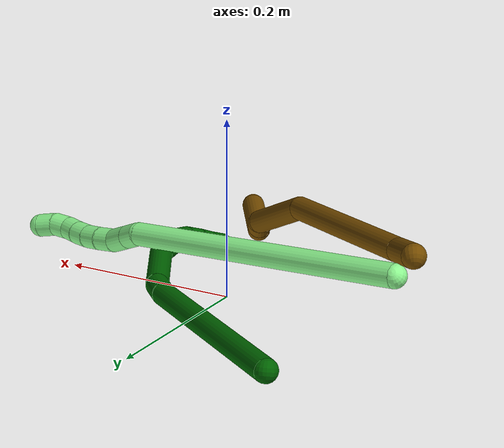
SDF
<sdf version="1.7">
 <world name="default">
  <model name="6">
   <static>0</static>
   <link name="6">
    <collision name="collision-cylinder-e_1_1_4">
     <pose>0.119059 -0.030065 0.020637 0.969263 1.27358 0.742655</pose>
     <geometry><cylinder><radius>0.0125</radius><length>0.249037</length></cylinder></geometry>
     <surface>
      <friction><ode><mu>1.16</mu><mu2>1.16</mu2><slip1>0</slip1><slip2>0</slip2></ode></friction>
      <contact><ode><kp>1e+06</kp><kd>1</kd><max_vel>0</max_vel><min_depth>0.001</min_depth></ode></contact>
     </surface>
    </collision>
    <visual name="visual-cylinder-e_1_1_4">
     <pose>0.119059 -0.030065 0.020637 0.969263 1.27358 0.742655</pose>
     <geometry><cylinder><radius>0.0125</radius><length>0.249037</length></cylinder></geometry>
     <material><ambient>0 0.392157 0.003922 1</ambient></material>
    </visual>
    <collision name="collision-cylinder-e_2_4_5">
     <pose>0.251006 -0.06569 0.044533 1.04044 1.10711 0.680516</pose>
     <geometry><cylinder><radius>0.0125</radius><length>0.028818</length></cylinder></geometry>
     <surface>
      <friction><ode><mu>1.16</mu><mu2>1.16</mu2><slip1>0</slip1><slip2>0</slip2></ode></friction>
      <contact><ode><kp>1e+06</kp><kd>1</kd><max_vel>0</max_vel><min_depth>0.001</min_depth></ode></contact>
     </surface>
    </collision>
    <visual name="visual-cylinder-e_2_4_5">
     <pose>0.251006 -0.06569 0.044533 1.04044 1.10711 0.680516</pose>
     <geometry><cylinder><radius>0.0125</radius><length>0.028818</length></cylinder></geometry>
     <material><ambient>0 0.392157 0.003922 1</ambient></material>
    </visual>
    <collision name="collision-cylinder-e_3_5_6">
     <pose>0.29952 -0.100029 0.061185 1.13525 0.84297 0.556908</pose>
     <geometry><cylinder><radius>0.0125</radius><length>0.095433</length></cylinder></geometry>
     <surface>
      <friction><ode><mu>1.16</mu><mu2>1.16</mu2><slip1>0</slip1><slip2>0</slip2></ode></friction>
      <contact><ode><kp>1e+06</kp><kd>1</kd><max_vel>0</max_vel><min_depth>0.001</min_depth></ode></contact>
     </surface>
    </collision>
    <visual name="visual-cylinder-e_3_5_6">
     <pose>0.29952 -0.100029 0.061185 1.13525 0.84297 0.556908</pose>
     <geometry><cylinder><radius>0.0125</radius><length>0.095433</length></cylinder></geometry>
     <material><ambient>0 0.392157 0.003922 1</ambient></material>
    </visual>
    <collision name="collision-cylinder-e_4_6_7">
     <pose>0.34119 -0.139654 0.078466 1.22662 0.483111 0.343397</pose>
     <geometry><cylinder><radius>0.0125</radius><length>0.026021</length></cylinder></geometry>
     <surface>
      <friction><ode><mu>1.16</mu><mu2>1.16</mu2><slip1>0</slip1><slip2>0</slip2></ode></friction>
      <contact><ode><kp>1e+06</kp><kd>1</kd><max_vel>0</max_vel><min_depth>0.001</min_depth></ode></contact>
     </surface>
    </collision>
    <visual name="visual-cylinder-e_4_6_7">
     <pose>0.34119 -0.139654 0.078466 1.22662 0.483111 0.343397</pose>
     <geometry><cylinder><radius>0.0125</radius><length>0.026021</length></cylinder></geometry>
     <material><ambient>0 0.392157 0.003922 1</ambient></material>
    </visual>
    <collision name="collision-cylinder-e_5_7_8">
     <pose>0.352016 -0.159035 0.085447 1.2231 0.484878 0.343418</pose>
     <geometry><cylinder><radius>0.0125</radius><length>0.020521</length></cylinder></geometry>
     <surface>
      <friction><ode><mu>1.16</mu><mu2>1.16</mu2><slip1>0</slip1><slip2>0</slip2></ode></friction>
      <contact><ode><kp>1e+06</kp><kd>1</kd><max_vel>0</max_vel><min_depth>0.001</min_depth></ode></contact>
     </surface>
    </collision>
    <visual name="visual-cylinder-e_5_7_8">
     <pose>0.352016 -0.159035 0.085447 1.2231 0.484878 0.343418</pose>
     <geometry><cylinder><radius>0.0125</radius><length>0.020521</length></cylinder></geometry>
     <material><ambient>0 0.392157 0.003922 1</ambient></material>
    </visual>
    <collision name="collision-cylinder-e_6_8_9">
     <pose>0.360572 -0.176809 0.089358 1.4824 0.38635 0.354333</pose>
     <geometry><cylinder><radius>0.0125</radius><length>0.020027</length></cylinder></geometry>
     <surface>
      <friction><ode><mu>1.16</mu><mu2>1.16</mu2><slip1>0</slip1><slip2>0</slip2></ode></friction>
      <contact><ode><kp>1e+06</kp><kd>1</kd><max_vel>0</max_vel><min_depth>0.001</min_depth></ode></contact>
     </surface>
    </collision>
    <visual name="visual-cylinder-e_6_8_9">
     <pose>0.360572 -0.176809 0.089358 1.4824 0.38635 0.354333</pose>
     <geometry><cylinder><radius>0.0125</radius><length>0.020027</length></cylinder></geometry>
     <material><ambient>0 0.392157 0.003922 1</ambient></material>
    </visual>
    <collision name="collision-cylinder-e_7_9_10">
     <pose>0.365212 -0.196007 0.089189 1.66967 0.086395 0.095376</pose>
     <geometry><cylinder><radius>0.0125</radius><length>0.020091</length></cylinder></geometry>
     <surface>
      <friction><ode><mu>1.16</mu><mu2>1.16</mu2><slip1>0</slip1><slip2>0</slip2></ode></friction>
      <contact><ode><kp>1e+06</kp><kd>1</kd><max_vel>0</max_vel><min_depth>0.001</min_depth></ode></contact>
     </surface>
    </collision>
    <visual name="visual-cylinder-e_7_9_10">
     <pose>0.365212 -0.196007 0.089189 1.66967 0.086395 0.095376</pose>
     <geometry><cylinder><radius>0.0125</radius><length>0.020091</length></cylinder></geometry>
     <material><ambient>0 0.392157 0.003922 1</ambient></material>
    </visual>
    <collision name="collision-cylinder-e_8_10_11">
     <pose>0.367755 -0.215733 0.086808 1.71254 0.168307 0.19388</pose>
     <geometry><cylinder><radius>0.0125</radius><length>0.020013</length></cylinder></geometry>
     <surface>
      <friction><ode><mu>1.16</mu><mu2>1.16</mu2><slip1>0</slip1><slip2>0</slip2></ode></friction>
      <contact><ode><kp>1e+06</kp><kd>1</kd><max_vel>0</max_vel><min_depth>0.001</min_depth></ode></contact>
     </surface>
    </collision>
    <visual name="visual-cylinder-e_8_10_11">
     <pose>0.367755 -0.215733 0.086808 1.71254 0.168307 0.19388</pose>
     <geometry><cylinder><radius>0.0125</radius><length>0.020013</length></cylinder></geometry>
     <material><ambient>0 0.392157 0.003922 1</ambient></material>
    </visual>
    <collision name="collision-cylinder-e_9_11_2">
     <pose>0.370874 -0.235361 0.084395 1.67379 0.144563 0.160211</pose>
     <geometry><cylinder><radius>0.0125</radius><length>0.020038</length></cylinder></geometry>
     <surface>
      <friction><ode><mu>1.16</mu><mu2>1.16</mu2><slip1>0</slip1><slip2>0</slip2></ode></friction>
      <contact><ode><kp>1e+06</kp><kd>1</kd><max_vel>0</max_vel><min_depth>0.001</min_depth></ode></contact>
     </surface>
    </collision>
    <visual name="visual-cylinder-e_9_11_2">
     <pose>0.370874 -0.235361 0.084395 1.67379 0.144563 0.160211</pose>
     <geometry><cylinder><radius>0.0125</radius><length>0.020038</length></cylinder></geometry>
     <material><ambient>0 0.392157 0.003922 1</ambient></material>
    </visual>
    <collision name="collision-sphere-2">
     <pose>0.372318 -0.245223 0.083376 0 -0 0</pose>
     <geometry><sphere><radius>0.0125</radius></sphere></geometry>
     <surface>
      <friction><ode><mu>1.16</mu><mu2>1.16</mu2><slip1>0</slip1><slip2>0</slip2></ode></friction>
      <contact><ode><kp>1e+06</kp><kd>1</kd><max_vel>0</max_vel><min_depth>0.001</min_depth></ode></contact>
     </surface>
    </collision>
    <visual name="visual-sphere-2">
     <pose>0.372318 -0.245223 0.083376 0 -0 0</pose>
     <geometry><sphere><radius>0.0125</radius></sphere></geometry>
     <material><ambient>0 0.392157 0.003922 1</ambient></material>
    </visual>
    <collision name="collision-sphere-11">
     <pose>0.369431 -0.225499 0.085414 0 -0 0</pose>
     <geometry><sphere><radius>0.0125</radius></sphere></geometry>
     <surface>
      <friction><ode><mu>1.16</mu><mu2>1.16</mu2><slip1>0</slip1><slip2>0</slip2></ode></friction>
      <contact><ode><kp>1e+06</kp><kd>1</kd><max_vel>0</max_vel><min_depth>0.001</min_depth></ode></contact>
     </surface>
    </collision>
    <visual name="visual-sphere-11">
     <pose>0.369431 -0.225499 0.085414 0 -0 0</pose>
     <geometry><sphere><radius>0.0125</radius></sphere></geometry>
     <material><ambient>0 0.392157 0.003922 1</ambient></material>
    </visual>
    <collision name="collision-sphere-10">
     <pose>0.366078 -0.205967 0.088201 0 -0 0</pose>
     <geometry><sphere><radius>0.0125</radius></sphere></geometry>
     <surface>
      <friction><ode><mu>1.16</mu><mu2>1.16</mu2><slip1>0</slip1><slip2>0</slip2></ode></friction>
      <contact><ode><kp>1e+06</kp><kd>1</kd><max_vel>0</max_vel><min_depth>0.001</min_depth></ode></contact>
     </surface>
    </collision>
    <visual name="visual-sphere-10">
     <pose>0.366078 -0.205967 0.088201 0 -0 0</pose>
     <geometry><sphere><radius>0.0125</radius></sphere></geometry>
     <material><ambient>0 0.392157 0.003922 1</ambient></material>
    </visual>
    <collision name="collision-sphere-9">
     <pose>0.364345 -0.186048 0.090177 0 -0 0</pose>
     <geometry><sphere><radius>0.0125</radius></sphere></geometry>
     <surface>
      <friction><ode><mu>1.16</mu><mu2>1.16</mu2><slip1>0</slip1><slip2>0</slip2></ode></friction>
      <contact><ode><kp>1e+06</kp><kd>1</kd><max_vel>0</max_vel><min_depth>0.001</min_depth></ode></contact>
     </surface>
    </collision>
    <visual name="visual-sphere-9">
     <pose>0.364345 -0.186048 0.090177 0 -0 0</pose>
     <geometry><sphere><radius>0.0125</radius></sphere></geometry>
     <material><ambient>0 0.392157 0.003922 1</ambient></material>
    </visual>
    <collision name="collision-sphere-4">
     <pose>0.238118 -0.060131 0.041273 0 -0 0</pose>
     <geometry><sphere><radius>0.0125</radius></sphere></geometry>
     <surface>
      <friction><ode><mu>1.16</mu><mu2>1.16</mu2><slip1>0</slip1><slip2>0</slip2></ode></friction>
      <contact><ode><kp>1e+06</kp><kd>1</kd><max_vel>0</max_vel><min_depth>0.001</min_depth></ode></contact>
     </surface>
    </collision>
    <visual name="visual-sphere-4">
     <pose>0.238118 -0.060131 0.041273 0 -0 0</pose>
     <geometry><sphere><radius>0.0125</radius></sphere></geometry>
     <material><ambient>0 0.392157 0.003922 1</ambient></material>
    </visual>
    <collision name="collision-sphere-1">
     <geometry><sphere><radius>0.0125</radius></sphere></geometry>
     <surface>
      <friction><ode><mu>1.16</mu><mu2>1.16</mu2><slip1>0</slip1><slip2>0</slip2></ode></friction>
      <contact><ode><kp>1e+06</kp><kd>1</kd><max_vel>0</max_vel><min_depth>0.001</min_depth></ode></contact>
     </surface>
    </collision>
    <visual name="visual-sphere-1">
     <geometry><sphere><radius>0.0125</radius></sphere></geometry>
     <material><ambient>0 0.392157 0.003922 1</ambient></material>
    </visual>
    <collision name="collision-sphere-8">
     <pose>0.356798 -0.167569 0.08854 0 -0 0</pose>
     <geometry><sphere><radius>0.0125</radius></sphere></geometry>
     <surface>
      <friction><ode><mu>1.16</mu><mu2>1.16</mu2><slip1>0</slip1><slip2>0</slip2></ode></friction>
      <contact><ode><kp>1e+06</kp><kd>1</kd><max_vel>0</max_vel><min_depth>0.001</min_depth></ode></contact>
     </surface>
    </collision>
    <visual name="visual-sphere-8">
     <pose>0.356798 -0.167569 0.08854 0 -0 0</pose>
     <geometry><sphere><radius>0.0125</radius></sphere></geometry>
     <material><ambient>0 0.392157 0.003922 1</ambient></material>
    </visual>
    <collision name="collision-sphere-5">
     <pose>0.263893 -0.071249 0.047793 0 -0 0</pose>
     <geometry><sphere><radius>0.0125</radius></sphere></geometry>
     <surface>
      <friction><ode><mu>1.16</mu><mu2>1.16</mu2><slip1>0</slip1><slip2>0</slip2></ode></friction>
      <contact><ode><kp>1e+06</kp><kd>1</kd><max_vel>0</max_vel><min_depth>0.001</min_depth></ode></contact>
     </surface>
    </collision>
    <visual name="visual-sphere-5">
     <pose>0.263893 -0.071249 0.047793 0 -0 0</pose>
     <geometry><sphere><radius>0.0125</radius></sphere></geometry>
     <material><ambient>0 0.392157 0.003922 1</ambient></material>
    </visual>
    <collision name="collision-sphere-6">
     <pose>0.335146 -0.128809 0.074578 0 -0 0</pose>
     <geometry><sphere><radius>0.0125</radius></sphere></geometry>
     <surface>
      <friction><ode><mu>1.16</mu><mu2>1.16</mu2><slip1>0</slip1><slip2>0</slip2></ode></friction>
      <contact><ode><kp>1e+06</kp><kd>1</kd><max_vel>0</max_vel><min_depth>0.001</min_depth></ode></contact>
     </surface>
    </collision>
    <visual name="visual-sphere-6">
     <pose>0.335146 -0.128809 0.074578 0 -0 0</pose>
     <geometry><sphere><radius>0.0125</radius></sphere></geometry>
     <material><ambient>0 0.392157 0.003922 1</ambient></material>
    </visual>
    <collision name="collision-sphere-7">
     <pose>0.347234 -0.1505 0.082353 0 -0 0</pose>
     <geometry><sphere><radius>0.0125</radius></sphere></geometry>
     <surface>
      <friction><ode><mu>1.16</mu><mu2>1.16</mu2><slip1>0</slip1><slip2>0</slip2></ode></friction>
      <contact><ode><kp>1e+06</kp><kd>1</kd><max_vel>0</max_vel><min_depth>0.001</min_depth></ode></contact>
     </surface>
    </collision>
    <visual name="visual-sphere-7">
     <pose>0.347234 -0.1505 0.082353 0 -0 0</pose>
     <geometry><sphere><radius>0.0125</radius></sphere></geometry>
     <material><ambient>0 0.392157 0.003922 1</ambient></material>
    </visual>
    <inertial>
     <pose>0.22184 -0.084673 0.046134 0 -0 0</pose>
     <mass>0.5</mass>
     <inertia>
      <ixx>0.000649</ixx>
      <ixy>0</ixy>
      <ixz>0</ixz>
      <iyy>0.001559</iyy>
      <iyz>0</iyz>
      <izz>-0.000927</izz>
     </inertia>
    </inertial>
   </link>
   <pose>-0.189411 0.251961 0.047908 0.250242 0.149871 -0.339359</pose>
  </model>
  <model name="12">
   <static>0</static>
   <link name="12">
    <collision name="collision-cylinder-e_1_1_4">
     <pose>0.025244 -0.007728 -0.017761 2.73117 0.916316 2.34285</pose>
     <geometry><cylinder><radius>0.0125</radius><length>0.063638</length></cylinder></geometry>
     <surface>
      <friction><ode><mu>1.16</mu><mu2>1.16</mu2><slip1>0</slip1><slip2>0</slip2></ode></friction>
      <contact><ode><kp>1e+06</kp><kd>1</kd><max_vel>0</max_vel><min_depth>0.001</min_depth></ode></contact>
     </surface>
    </collision>
    <visual name="visual-cylinder-e_1_1_4">
     <pose>0.025244 -0.007728 -0.017761 2.73117 0.916316 2.34285</pose>
     <geometry><cylinder><radius>0.0125</radius><length>0.063638</length></cylinder></geometry>
     <material><ambient>0.466667 0.301961 0 1</ambient></material>
    </visual>
    <collision name="collision-cylinder-e_2_4_5">
     <pose>0.115007 -0.06814 -0.10113 2.46502 0.654152 1.53448</pose>
     <geometry><cylinder><radius>0.0125</radius><length>0.212062</length></cylinder></geometry>
     <surface>
      <friction><ode><mu>1.16</mu><mu2>1.16</mu2><slip1>0</slip1><slip2>0</slip2></ode></friction>
      <contact><ode><kp>1e+06</kp><kd>1</kd><max_vel>0</max_vel><min_depth>0.001</min_depth></ode></contact>
     </surface>
    </collision>
    <visual name="visual-cylinder-e_2_4_5">
     <pose>0.115007 -0.06814 -0.10113 2.46502 0.654152 1.53448</pose>
     <geometry><cylinder><radius>0.0125</radius><length>0.212062</length></cylinder></geometry>
     <material><ambient>0.466667 0.301961 0 1</ambient></material>
    </visual>
    <collision name="collision-cylinder-e_3_5_6">
     <pose>0.214286 -0.146658 -0.180637 2.06438 0.869856 1.32177</pose>
     <geometry><cylinder><radius>0.0125</radius><length>0.09097</length></cylinder></geometry>
     <surface>
      <friction><ode><mu>1.16</mu><mu2>1.16</mu2><slip1>0</slip1><slip2>0</slip2></ode></friction>
      <contact><ode><kp>1e+06</kp><kd>1</kd><max_vel>0</max_vel><min_depth>0.001</min_depth></ode></contact>
     </surface>
    </collision>
    <visual name="visual-cylinder-e_3_5_6">
     <pose>0.214286 -0.146658 -0.180637 2.06438 0.869856 1.32177</pose>
     <geometry><cylinder><radius>0.0125</radius><length>0.09097</length></cylinder></geometry>
     <material><ambient>0.466667 0.301961 0 1</ambient></material>
    </visual>
    <collision name="collision-cylinder-e_4_6_7">
     <pose>0.259917 -0.173858 -0.197634 2.72622 1.26869 2.58374</pose>
     <geometry><cylinder><radius>0.0125</radius><length>0.022769</length></cylinder></geometry>
     <surface>
      <friction><ode><mu>1.16</mu><mu2>1.16</mu2><slip1>0</slip1><slip2>0</slip2></ode></friction>
      <contact><ode><kp>1e+06</kp><kd>1</kd><max_vel>0</max_vel><min_depth>0.001</min_depth></ode></contact>
     </surface>
    </collision>
    <visual name="visual-cylinder-e_4_6_7">
     <pose>0.259917 -0.173858 -0.197634 2.72622 1.26869 2.58374</pose>
     <geometry><cylinder><radius>0.0125</radius><length>0.022769</length></cylinder></geometry>
     <material><ambient>0.466667 0.301961 0 1</ambient></material>
    </visual>
    <collision name="collision-cylinder-e_5_7_8">
     <pose>0.286724 -0.17731 -0.208015 2.86265 1.12715 2.7044</pose>
     <geometry><cylinder><radius>0.0125</radius><length>0.035294</length></cylinder></geometry>
     <surface>
      <friction><ode><mu>1.16</mu><mu2>1.16</mu2><slip1>0</slip1><slip2>0</slip2></ode></friction>
      <contact><ode><kp>1e+06</kp><kd>1</kd><max_vel>0</max_vel><min_depth>0.001</min_depth></ode></contact>
     </surface>
    </collision>
    <visual name="visual-cylinder-e_5_7_8">
     <pose>0.286724 -0.17731 -0.208015 2.86265 1.12715 2.7044</pose>
     <geometry><cylinder><radius>0.0125</radius><length>0.035294</length></cylinder></geometry>
     <material><ambient>0.466667 0.301961 0 1</ambient></material>
    </visual>
    <collision name="collision-cylinder-e_6_8_2">
     <pose>0.325108 -0.184868 -0.245005 2.95943 0.639015 2.60289</pose>
     <geometry><cylinder><radius>0.0125</radius><length>0.075267</length></cylinder></geometry>
     <surface>
      <friction><ode><mu>1.16</mu><mu2>1.16</mu2><slip1>0</slip1><slip2>0</slip2></ode></friction>
      <contact><ode><kp>1e+06</kp><kd>1</kd><max_vel>0</max_vel><min_depth>0.001</min_depth></ode></contact>
     </surface>
    </collision>
    <visual name="visual-cylinder-e_6_8_2">
     <pose>0.325108 -0.184868 -0.245005 2.95943 0.639015 2.60289</pose>
     <geometry><cylinder><radius>0.0125</radius><length>0.075267</length></cylinder></geometry>
     <material><ambient>0.466667 0.301961 0 1</ambient></material>
    </visual>
    <collision name="collision-sphere-2">
     <pose>0.347552 -0.190341 -0.274713 0 -0 0</pose>
     <geometry><sphere><radius>0.0125</radius></sphere></geometry>
     <surface>
      <friction><ode><mu>1.16</mu><mu2>1.16</mu2><slip1>0</slip1><slip2>0</slip2></ode></friction>
      <contact><ode><kp>1e+06</kp><kd>1</kd><max_vel>0</max_vel><min_depth>0.001</min_depth></ode></contact>
     </surface>
    </collision>
    <visual name="visual-sphere-2">
     <pose>0.347552 -0.190341 -0.274713 0 -0 0</pose>
     <geometry><sphere><radius>0.0125</radius></sphere></geometry>
     <material><ambient>0.466667 0.301961 0 1</ambient></material>
    </visual>
    <collision name="collision-sphere-4">
     <pose>0.050488 -0.015457 -0.035522 0 -0 0</pose>
     <geometry><sphere><radius>0.0125</radius></sphere></geometry>
     <surface>
      <friction><ode><mu>1.16</mu><mu2>1.16</mu2><slip1>0</slip1><slip2>0</slip2></ode></friction>
      <contact><ode><kp>1e+06</kp><kd>1</kd><max_vel>0</max_vel><min_depth>0.001</min_depth></ode></contact>
     </surface>
    </collision>
    <visual name="visual-sphere-4">
     <pose>0.050488 -0.015457 -0.035522 0 -0 0</pose>
     <geometry><sphere><radius>0.0125</radius></sphere></geometry>
     <material><ambient>0.466667 0.301961 0 1</ambient></material>
    </visual>
    <collision name="collision-sphere-1">
     <geometry><sphere><radius>0.0125</radius></sphere></geometry>
     <surface>
      <friction><ode><mu>1.16</mu><mu2>1.16</mu2><slip1>0</slip1><slip2>0</slip2></ode></friction>
      <contact><ode><kp>1e+06</kp><kd>1</kd><max_vel>0</max_vel><min_depth>0.001</min_depth></ode></contact>
     </surface>
    </collision>
    <visual name="visual-sphere-1">
     <geometry><sphere><radius>0.0125</radius></sphere></geometry>
     <material><ambient>0.466667 0.301961 0 1</ambient></material>
    </visual>
    <collision name="collision-sphere-8">
     <pose>0.302663 -0.179396 -0.215297 0 -0 0</pose>
     <geometry><sphere><radius>0.0125</radius></sphere></geometry>
     <surface>
      <friction><ode><mu>1.16</mu><mu2>1.16</mu2><slip1>0</slip1><slip2>0</slip2></ode></friction>
      <contact><ode><kp>1e+06</kp><kd>1</kd><max_vel>0</max_vel><min_depth>0.001</min_depth></ode></contact>
     </surface>
    </collision>
    <visual name="visual-sphere-8">
     <pose>0.302663 -0.179396 -0.215297 0 -0 0</pose>
     <geometry><sphere><radius>0.0125</radius></sphere></geometry>
     <material><ambient>0.466667 0.301961 0 1</ambient></material>
    </visual>
    <collision name="collision-sphere-5">
     <pose>0.179525 -0.120824 -0.166738 0 -0 0</pose>
     <geometry><sphere><radius>0.0125</radius></sphere></geometry>
     <surface>
      <friction><ode><mu>1.16</mu><mu2>1.16</mu2><slip1>0</slip1><slip2>0</slip2></ode></friction>
      <contact><ode><kp>1e+06</kp><kd>1</kd><max_vel>0</max_vel><min_depth>0.001</min_depth></ode></contact>
     </surface>
    </collision>
    <visual name="visual-sphere-5">
     <pose>0.179525 -0.120824 -0.166738 0 -0 0</pose>
     <geometry><sphere><radius>0.0125</radius></sphere></geometry>
     <material><ambient>0.466667 0.301961 0 1</ambient></material>
    </visual>
    <collision name="collision-sphere-6">
     <pose>0.249048 -0.172491 -0.194535 0 -0 0</pose>
     <geometry><sphere><radius>0.0125</radius></sphere></geometry>
     <surface>
      <friction><ode><mu>1.16</mu><mu2>1.16</mu2><slip1>0</slip1><slip2>0</slip2></ode></friction>
      <contact><ode><kp>1e+06</kp><kd>1</kd><max_vel>0</max_vel><min_depth>0.001</min_depth></ode></contact>
     </surface>
    </collision>
    <visual name="visual-sphere-6">
     <pose>0.249048 -0.172491 -0.194535 0 -0 0</pose>
     <geometry><sphere><radius>0.0125</radius></sphere></geometry>
     <material><ambient>0.466667 0.301961 0 1</ambient></material>
    </visual>
    <collision name="collision-sphere-7">
     <pose>0.270785 -0.175225 -0.200734 0 -0 0</pose>
     <geometry><sphere><radius>0.0125</radius></sphere></geometry>
     <surface>
      <friction><ode><mu>1.16</mu><mu2>1.16</mu2><slip1>0</slip1><slip2>0</slip2></ode></friction>
      <contact><ode><kp>1e+06</kp><kd>1</kd><max_vel>0</max_vel><min_depth>0.001</min_depth></ode></contact>
     </surface>
    </collision>
    <visual name="visual-sphere-7">
     <pose>0.270785 -0.175225 -0.200734 0 -0 0</pose>
     <geometry><sphere><radius>0.0125</radius></sphere></geometry>
     <material><ambient>0.466667 0.301961 0 1</ambient></material>
    </visual>
    <inertial>
     <pose>0.171992 -0.104829 -0.138582 0 -0 0</pose>
     <mass>0.5</mass>
     <inertia>
      <ixx>0.000727</ixx>
      <ixy>0</ixy>
      <ixz>0</ixz>
      <iyy>0.001072</iyy>
      <iyz>0</iyz>
      <izz>-0.00016</izz>
     </inertia>
    </inertial>
   </link>
   <pose>-0.288784 0.14814 0.146622 2.96853 0.839514 -1.25314</pose>
  </model>
  <model name="13">
   <static>0</static>
   <link name="13">
    <collision name="collision-cylinder-e_1_1_4">
     <pose>0.141729 -0.065704 -0.05313 2.25077 1.03318 1.74376</pose>
     <geometry><cylinder><radius>0.0125</radius><length>0.330012</length></cylinder></geometry>
     <surface>
      <friction><ode><mu>1.16</mu><mu2>1.16</mu2><slip1>0</slip1><slip2>0</slip2></ode></friction>
      <contact><ode><kp>1e+06</kp><kd>1</kd><max_vel>0</max_vel><min_depth>0.001</min_depth></ode></contact>
     </surface>
    </collision>
    <visual name="visual-cylinder-e_1_1_4">
     <pose>0.141729 -0.065704 -0.05313 2.25077 1.03318 1.74376</pose>
     <geometry><cylinder><radius>0.0125</radius><length>0.330012</length></cylinder></geometry>
     <material><ambient>0.564706 0.984314 0.572549 1</ambient></material>
    </visual>
    <collision name="collision-cylinder-e_2_4_5">
     <pose>0.291396 -0.133346 -0.112399 2.83592 0.889455 2.51634</pose>
     <geometry><cylinder><radius>0.0125</radius><length>0.02044</length></cylinder></geometry>
     <surface>
      <friction><ode><mu>1.16</mu><mu2>1.16</mu2><slip1>0</slip1><slip2>0</slip2></ode></friction>
      <contact><ode><kp>1e+06</kp><kd>1</kd><max_vel>0</max_vel><min_depth>0.001</min_depth></ode></contact>
     </surface>
    </collision>
    <visual name="visual-cylinder-e_2_4_5">
     <pose>0.291396 -0.133346 -0.112399 2.83592 0.889455 2.51634</pose>
     <geometry><cylinder><radius>0.0125</radius><length>0.02044</length></cylinder></geometry>
     <material><ambient>0.564706 0.984314 0.572549 1</ambient></material>
    </visual>
    <collision name="collision-cylinder-e_3_5_6">
     <pose>0.309742 -0.137872 -0.126629 2.83186 0.886155 2.50594</pose>
     <geometry><cylinder><radius>0.0125</radius><length>0.02687</length></cylinder></geometry>
     <surface>
      <friction><ode><mu>1.16</mu><mu2>1.16</mu2><slip1>0</slip1><slip2>0</slip2></ode></friction>
      <contact><ode><kp>1e+06</kp><kd>1</kd><max_vel>0</max_vel><min_depth>0.001</min_depth></ode></contact>
     </surface>
    </collision>
    <visual name="visual-cylinder-e_3_5_6">
     <pose>0.309742 -0.137872 -0.126629 2.83186 0.886155 2.50594</pose>
     <geometry><cylinder><radius>0.0125</radius><length>0.02687</length></cylinder></geometry>
     <material><ambient>0.564706 0.984314 0.572549 1</ambient></material>
    </visual>
    <collision name="collision-cylinder-e_4_6_7">
     <pose>0.329126 -0.144473 -0.138707 2.35306 1.00876 1.84985</pose>
     <geometry><cylinder><radius>0.0125</radius><length>0.021219</length></cylinder></geometry>
     <surface>
      <friction><ode><mu>1.16</mu><mu2>1.16</mu2><slip1>0</slip1><slip2>0</slip2></ode></friction>
      <contact><ode><kp>1e+06</kp><kd>1</kd><max_vel>0</max_vel><min_depth>0.001</min_depth></ode></contact>
     </surface>
    </collision>
    <visual name="visual-cylinder-e_4_6_7">
     <pose>0.329126 -0.144473 -0.138707 2.35306 1.00876 1.84985</pose>
     <geometry><cylinder><radius>0.0125</radius><length>0.021219</length></cylinder></geometry>
     <material><ambient>0.564706 0.984314 0.572549 1</ambient></material>
    </visual>
    <collision name="collision-cylinder-e_5_7_8">
     <pose>0.346518 -0.152943 -0.147485 2.39213 0.909539 1.78674</pose>
     <geometry><cylinder><radius>0.0125</radius><length>0.021322</length></cylinder></geometry>
     <surface>
      <friction><ode><mu>1.16</mu><mu2>1.16</mu2><slip1>0</slip1><slip2>0</slip2></ode></friction>
      <contact><ode><kp>1e+06</kp><kd>1</kd><max_vel>0</max_vel><min_depth>0.001</min_depth></ode></contact>
     </surface>
    </collision>
    <visual name="visual-cylinder-e_5_7_8">
     <pose>0.346518 -0.152943 -0.147485 2.39213 0.909539 1.78674</pose>
     <geometry><cylinder><radius>0.0125</radius><length>0.021322</length></cylinder></geometry>
     <material><ambient>0.564706 0.984314 0.572549 1</ambient></material>
    </visual>
    <collision name="collision-cylinder-e_6_8_9">
     <pose>0.362316 -0.162532 -0.156809 2.29443 0.823313 1.53864</pose>
     <geometry><cylinder><radius>0.0125</radius><length>0.020136</length></cylinder></geometry>
     <surface>
      <friction><ode><mu>1.16</mu><mu2>1.16</mu2><slip1>0</slip1><slip2>0</slip2></ode></friction>
      <contact><ode><kp>1e+06</kp><kd>1</kd><max_vel>0</max_vel><min_depth>0.001</min_depth></ode></contact>
     </surface>
    </collision>
    <visual name="visual-cylinder-e_6_8_9">
     <pose>0.362316 -0.162532 -0.156809 2.29443 0.823313 1.53864</pose>
     <geometry><cylinder><radius>0.0125</radius><length>0.020136</length></cylinder></geometry>
     <material><ambient>0.564706 0.984314 0.572549 1</ambient></material>
    </visual>
    <collision name="collision-cylinder-e_7_9_10">
     <pose>0.37651 -0.173237 -0.166089 2.27619 0.749101 1.41024</pose>
     <geometry><cylinder><radius>0.0125</radius><length>0.020001</length></cylinder></geometry>
     <surface>
      <friction><ode><mu>1.16</mu><mu2>1.16</mu2><slip1>0</slip1><slip2>0</slip2></ode></friction>
      <contact><ode><kp>1e+06</kp><kd>1</kd><max_vel>0</max_vel><min_depth>0.001</min_depth></ode></contact>
     </surface>
    </collision>
    <visual name="visual-cylinder-e_7_9_10">
     <pose>0.37651 -0.173237 -0.166089 2.27619 0.749101 1.41024</pose>
     <geometry><cylinder><radius>0.0125</radius><length>0.020001</length></cylinder></geometry>
     <material><ambient>0.564706 0.984314 0.572549 1</ambient></material>
    </visual>
    <collision name="collision-cylinder-e_8_10_11">
     <pose>0.391752 -0.183571 -0.173338 2.05478 1.00322 1.47425</pose>
     <geometry><cylinder><radius>0.0125</radius><length>0.02</length></cylinder></geometry>
     <surface>
      <friction><ode><mu>1.16</mu><mu2>1.16</mu2><slip1>0</slip1><slip2>0</slip2></ode></friction>
      <contact><ode><kp>1e+06</kp><kd>1</kd><max_vel>0</max_vel><min_depth>0.001</min_depth></ode></contact>
     </surface>
    </collision>
    <visual name="visual-cylinder-e_8_10_11">
     <pose>0.391752 -0.183571 -0.173338 2.05478 1.00322 1.47425</pose>
     <geometry><cylinder><radius>0.0125</radius><length>0.02</length></cylinder></geometry>
     <material><ambient>0.564706 0.984314 0.572549 1</ambient></material>
    </visual>
    <collision name="collision-cylinder-e_9_11_2">
     <pose>0.409807 -0.190187 -0.177824 2.3893 1.29555 2.17951</pose>
     <geometry><cylinder><radius>0.0125</radius><length>0.02</length></cylinder></geometry>
     <surface>
      <friction><ode><mu>1.16</mu><mu2>1.16</mu2><slip1>0</slip1><slip2>0</slip2></ode></friction>
      <contact><ode><kp>1e+06</kp><kd>1</kd><max_vel>0</max_vel><min_depth>0.001</min_depth></ode></contact>
     </surface>
    </collision>
    <visual name="visual-cylinder-e_9_11_2">
     <pose>0.409807 -0.190187 -0.177824 2.3893 1.29555 2.17951</pose>
     <geometry><cylinder><radius>0.0125</radius><length>0.02</length></cylinder></geometry>
     <material><ambient>0.564706 0.984314 0.572549 1</ambient></material>
    </visual>
    <collision name="collision-sphere-2">
     <pose>0.419431 -0.192044 -0.179809 0 -0 0</pose>
     <geometry><sphere><radius>0.0125</radius></sphere></geometry>
     <surface>
      <friction><ode><mu>1.16</mu><mu2>1.16</mu2><slip1>0</slip1><slip2>0</slip2></ode></friction>
      <contact><ode><kp>1e+06</kp><kd>1</kd><max_vel>0</max_vel><min_depth>0.001</min_depth></ode></contact>
     </surface>
    </collision>
    <visual name="visual-sphere-2">
     <pose>0.419431 -0.192044 -0.179809 0 -0 0</pose>
     <geometry><sphere><radius>0.0125</radius></sphere></geometry>
     <material><ambient>0.564706 0.984314 0.572549 1</ambient></material>
    </visual>
    <collision name="collision-sphere-11">
     <pose>0.400184 -0.18833 -0.17584 0 -0 0</pose>
     <geometry><sphere><radius>0.0125</radius></sphere></geometry>
     <surface>
      <friction><ode><mu>1.16</mu><mu2>1.16</mu2><slip1>0</slip1><slip2>0</slip2></ode></friction>
      <contact><ode><kp>1e+06</kp><kd>1</kd><max_vel>0</max_vel><min_depth>0.001</min_depth></ode></contact>
     </surface>
    </collision>
    <visual name="visual-sphere-11">
     <pose>0.400184 -0.18833 -0.17584 0 -0 0</pose>
     <geometry><sphere><radius>0.0125</radius></sphere></geometry>
     <material><ambient>0.564706 0.984314 0.572549 1</ambient></material>
    </visual>
    <collision name="collision-sphere-10">
     <pose>0.38332 -0.178813 -0.170837 0 -0 0</pose>
     <geometry><sphere><radius>0.0125</radius></sphere></geometry>
     <surface>
      <friction><ode><mu>1.16</mu><mu2>1.16</mu2><slip1>0</slip1><slip2>0</slip2></ode></friction>
      <contact><ode><kp>1e+06</kp><kd>1</kd><max_vel>0</max_vel><min_depth>0.001</min_depth></ode></contact>
     </surface>
    </collision>
    <visual name="visual-sphere-10">
     <pose>0.38332 -0.178813 -0.170837 0 -0 0</pose>
     <geometry><sphere><radius>0.0125</radius></sphere></geometry>
     <material><ambient>0.564706 0.984314 0.572549 1</ambient></material>
    </visual>
    <collision name="collision-sphere-9">
     <pose>0.3697 -0.167661 -0.161341 0 -0 0</pose>
     <geometry><sphere><radius>0.0125</radius></sphere></geometry>
     <surface>
      <friction><ode><mu>1.16</mu><mu2>1.16</mu2><slip1>0</slip1><slip2>0</slip2></ode></friction>
      <contact><ode><kp>1e+06</kp><kd>1</kd><max_vel>0</max_vel><min_depth>0.001</min_depth></ode></contact>
     </surface>
    </collision>
    <visual name="visual-sphere-9">
     <pose>0.3697 -0.167661 -0.161341 0 -0 0</pose>
     <geometry><sphere><radius>0.0125</radius></sphere></geometry>
     <material><ambient>0.564706 0.984314 0.572549 1</ambient></material>
    </visual>
    <collision name="collision-sphere-4">
     <pose>0.283458 -0.131408 -0.10626 0 -0 0</pose>
     <geometry><sphere><radius>0.0125</radius></sphere></geometry>
     <surface>
      <friction><ode><mu>1.16</mu><mu2>1.16</mu2><slip1>0</slip1><slip2>0</slip2></ode></friction>
      <contact><ode><kp>1e+06</kp><kd>1</kd><max_vel>0</max_vel><min_depth>0.001</min_depth></ode></contact>
     </surface>
    </collision>
    <visual name="visual-sphere-4">
     <pose>0.283458 -0.131408 -0.10626 0 -0 0</pose>
     <geometry><sphere><radius>0.0125</radius></sphere></geometry>
     <material><ambient>0.564706 0.984314 0.572549 1</ambient></material>
    </visual>
    <collision name="collision-sphere-1">
     <geometry><sphere><radius>0.0125</radius></sphere></geometry>
     <surface>
      <friction><ode><mu>1.16</mu><mu2>1.16</mu2><slip1>0</slip1><slip2>0</slip2></ode></friction>
      <contact><ode><kp>1e+06</kp><kd>1</kd><max_vel>0</max_vel><min_depth>0.001</min_depth></ode></contact>
     </surface>
    </collision>
    <visual name="visual-sphere-1">
     <geometry><sphere><radius>0.0125</radius></sphere></geometry>
     <material><ambient>0.564706 0.984314 0.572549 1</ambient></material>
    </visual>
    <collision name="collision-sphere-8">
     <pose>0.354932 -0.157403 -0.152278 0 -0 0</pose>
     <geometry><sphere><radius>0.0125</radius></sphere></geometry>
     <surface>
      <friction><ode><mu>1.16</mu><mu2>1.16</mu2><slip1>0</slip1><slip2>0</slip2></ode></friction>
      <contact><ode><kp>1e+06</kp><kd>1</kd><max_vel>0</max_vel><min_depth>0.001</min_depth></ode></contact>
     </surface>
    </collision>
    <visual name="visual-sphere-8">
     <pose>0.354932 -0.157403 -0.152278 0 -0 0</pose>
     <geometry><sphere><radius>0.0125</radius></sphere></geometry>
     <material><ambient>0.564706 0.984314 0.572549 1</ambient></material>
    </visual>
    <collision name="collision-sphere-5">
     <pose>0.299334 -0.135283 -0.118538 0 -0 0</pose>
     <geometry><sphere><radius>0.0125</radius></sphere></geometry>
     <surface>
      <friction><ode><mu>1.16</mu><mu2>1.16</mu2><slip1>0</slip1><slip2>0</slip2></ode></friction>
      <contact><ode><kp>1e+06</kp><kd>1</kd><max_vel>0</max_vel><min_depth>0.001</min_depth></ode></contact>
     </surface>
    </collision>
    <visual name="visual-sphere-5">
     <pose>0.299334 -0.135283 -0.118538 0 -0 0</pose>
     <geometry><sphere><radius>0.0125</radius></sphere></geometry>
     <material><ambient>0.564706 0.984314 0.572549 1</ambient></material>
    </visual>
    <collision name="collision-sphere-6">
     <pose>0.320149 -0.140462 -0.134721 0 -0 0</pose>
     <geometry><sphere><radius>0.0125</radius></sphere></geometry>
     <surface>
      <friction><ode><mu>1.16</mu><mu2>1.16</mu2><slip1>0</slip1><slip2>0</slip2></ode></friction>
      <contact><ode><kp>1e+06</kp><kd>1</kd><max_vel>0</max_vel><min_depth>0.001</min_depth></ode></contact>
     </surface>
    </collision>
    <visual name="visual-sphere-6">
     <pose>0.320149 -0.140462 -0.134721 0 -0 0</pose>
     <geometry><sphere><radius>0.0125</radius></sphere></geometry>
     <material><ambient>0.564706 0.984314 0.572549 1</ambient></material>
    </visual>
    <collision name="collision-sphere-7">
     <pose>0.338104 -0.148483 -0.142692 0 -0 0</pose>
     <geometry><sphere><radius>0.0125</radius></sphere></geometry>
     <surface>
      <friction><ode><mu>1.16</mu><mu2>1.16</mu2><slip1>0</slip1><slip2>0</slip2></ode></friction>
      <contact><ode><kp>1e+06</kp><kd>1</kd><max_vel>0</max_vel><min_depth>0.001</min_depth></ode></contact>
     </surface>
    </collision>
    <visual name="visual-sphere-7">
     <pose>0.338104 -0.148483 -0.142692 0 -0 0</pose>
     <geometry><sphere><radius>0.0125</radius></sphere></geometry>
     <material><ambient>0.564706 0.984314 0.572549 1</ambient></material>
    </visual>
    <inertial>
     <pose>0.212561 -0.097306 -0.085648 0 -0 0</pose>
     <mass>0.5</mass>
     <inertia>
      <ixx>0.001289</ixx>
      <ixy>0</ixy>
      <ixz>0</ixz>
      <iyy>0.003823</iyy>
      <iyz>0</iyz>
      <izz>-0.001406</izz>
     </inertia>
    </inertial>
   </link>
   <pose>-0.264421 0.136964 0.118696 -0.910397 0.246734 0.356014</pose>
  </model>
 </world>
</sdf>
